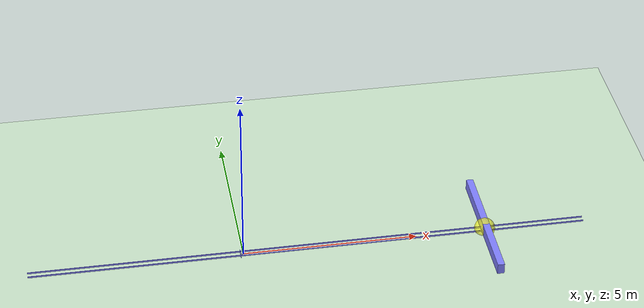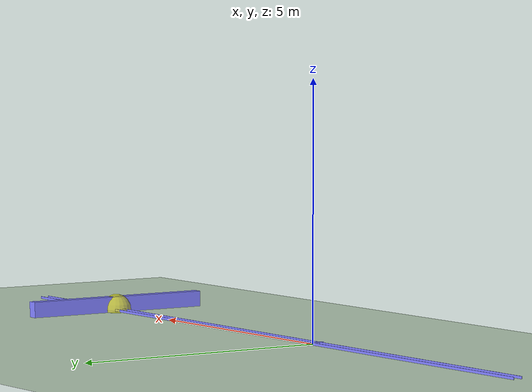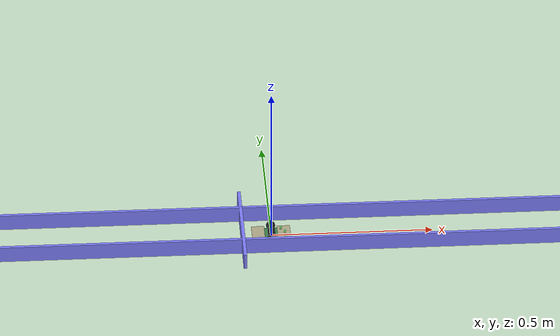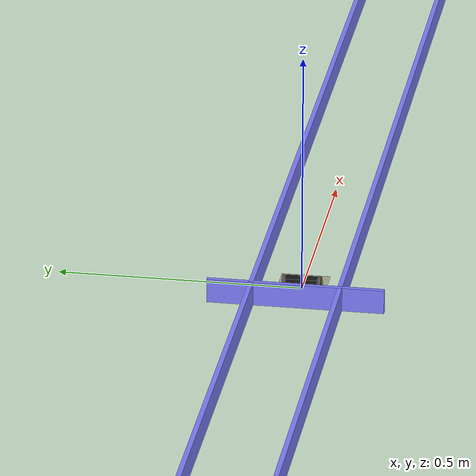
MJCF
<mujoco>
    <default>
        <default class="wheel">
            <geom type="cylinder" size=".0027 .0007" rgba=".5 .5 1 1" />
        </default>
    </default>

    <compiler angle="degree" coordinate="local" inertiafromgeom="true" />
    <option integrator="RK4" timestep="0.01" />
    <asset>
        <texture builtin="gradient" height="100" rgb1="1 1 1" rgb2="0 0 0" type="skybox" width="100" />
        <texture builtin="flat" height="1278" mark="cross" markrgb="1 1 1" name="texgeom"
            random="0.01" rgb1="0.8 0.6 0.4" rgb2="0.8 0.6 0.4" type="cube" width="127" />
        <texture builtin="checker" height="100" name="texplane" rgb1="0 0 0" rgb2="0.8 0.8 0.8"
            type="2d" width="100" />
        <material name="MatPlane" reflectance="0.5" shininess="1" specular="1" texrepeat="60 60"
            texture="texplane" />
        <material name="geom" texture="texgeom" texuniform="true" />
    </asset>

    <worldbody>

        <geom conaffinity="1" condim="3" name="floor" friction="0.0 0.0 0.0" pos="0 0 0" rgba="0.8 0.9 0.8 1" size="40 40 40" type="plane"/>

        <body pos="0 0 0">
            <freejoint />
            <site name="sensor_left_front" type="box" size="0.003 0.003 0.003" pos="0.031 0.036 0.004" zaxis="1 0 0" rgba=".5 1 .5 1"/>
            <site name="sensor_left_side" type="box" size="0.003 0.003 0.003" pos="0.043 0.016 0.004" zaxis="0.25 1 0" rgba=".5 1 .5 1"/>
            <site name="sensor_right_front" type="box" size="0.003 0.003 0.003" pos="0.031 -0.036 0.004" zaxis="1 0 0" rgba=".5 1 .5 1"/>
            <site name="sensor_right_side" type="box" size="0.003 0.003 0.003" pos="0.043 -0.016 0.004" zaxis="0.25 -1 0" rgba=".5 1 .5 1"/>
            <body>
                <geom name="mein_body" type="box" size="0.05 0.04 0.0005" friction="0.0 0.0 0.0" rgba="0.05 0.4 0.15 .7" pos="0 0 0.001" />
                <site name = "hit_box" type = "box" size = "0.02 0.05 0.0005" pos="0.04 0 0.002" rgba=".5 .2 0 .3"/>
                <site name = "hit_box2" type = "box" size = "0.02 0.05 0.0005" pos="-0.04 0 0.002" rgba=".5 .2 0 .3"/>
            </body>

            <body name="left wheel" pos="-0.0 0.036 0.0135" zaxis="0 1 0">
                <joint name="left wheel joint" type="hinge" axis="0 0 1" limited="false" />
                <geom type="cylinder" size="0.0135 0.0035" rgba=".3 .3 0.3 1" />
                <site type="box" rgba="1 1 1 1" size=".0006 .0036 .0012" />
            </body>

            <body name="right wheel" pos="-0.0 -0.036 0.0135" zaxis="0 1 0">
                <joint name="right wheel joint" type="hinge" axis="0 0 1" limited="false" />
                <geom type="cylinder" size="0.0135 0.0035" rgba=".3 .3 0.3 1" />
                <site type="box" rgba="1 1 1 1" size=".0006 .0036 .0012" />
            </body>

            <body name="motorbox1" pos="0 -0.018 0.0135">
                <geom type="box" size="0.01 0.0135 0.01" rgba="0.1 0.1 0.1 1" />
            </body>

            <body name="motorbox2" pos="0 0.018 0.0135">
                <geom type="box" size="0.01 0.0135 0.01" rgba="0.1 0.1 0.1 1" />
            </body>

        </body>

        <body name="wall" pos="7 0.0 0">
                <geom type="box" size="0.1 2 0.3" rgba=".5 .5 1 1" />
            </body>

        <body name="maze_wall2ss" pos="-0.09 0 0.025">
                <geom type="box" size="0.005 0.18 0.025" rgba=".5 .5 1 1" />
            </body>

<!-- かべかべかべｎ --><!-- かべかべかべｎ --><!-- かべかべかべｎ --><!-- かべかべかべｎ --><!-- かべかべかべｎ -->

        <body name="maze_wall2" pos="1.9 -0.09 0.025">
                <geom type="box" size="8 0.005 0.025" rgba=".5 .5 1 1" />
            </body>
            <body name="long_wall2" pos="1.9 0.09 0.025">
                <geom type="box" size="8 0.005 0.025" rgba=".5 .5 1 1" />
            </body>
<!-- かべかべかべｎ --><!-- かべかべかべｎ --><!-- かべかべかべｎ --><!-- かべかべかべｎ --><!-- かべかべかべｎ -->

            <body name="goal1" pos="7 0 0.045">
                <geom name="goal" type="sphere" size="0.3" rgba="1 1 0 0.6" />
            </body>

    </worldbody>
    <actuator>
        <motor name="right" joint="right wheel joint" gear="0.0008"/>
        <motor name="left" joint="left wheel joint" gear="0.0008"/>
    </actuator>

    <sensor>
        <rangefinder name="LF" site="sensor_left_front" cutoff="0.20"/>
        <rangefinder name="LS" site="sensor_left_side" cutoff="0.20"/>
        <rangefinder name="RF" site="sensor_right_front" cutoff="0.20"/>
        <rangefinder name="RS" site="sensor_right_side" cutoff="0.20"/>
        <touch name = "HB" site = "hit_box"/>
        <touch name = "HB2" site = "hit_box2"/>
    </sensor>
</mujoco>
